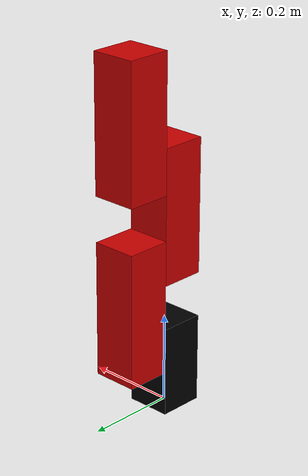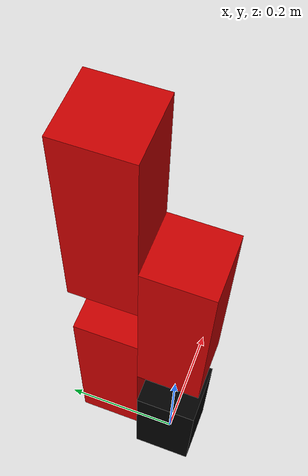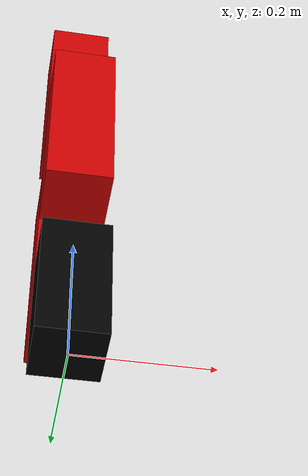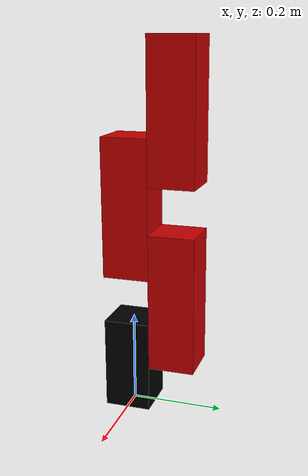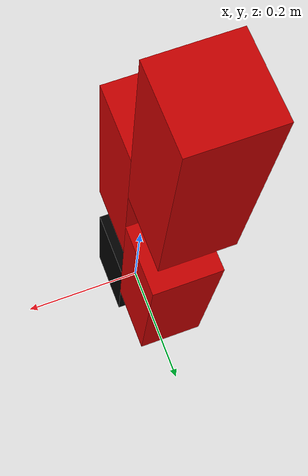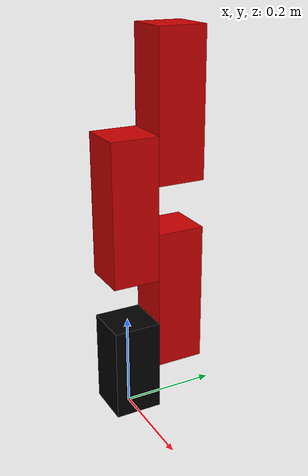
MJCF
<mujoco model="threelink">
  <compiler angle="radian"/>

  <worldbody>
    <geom size="0.05 0.05 0.1" pos="0 0 0.1" type="box" rgba="0 0 0 1"/>
    <body name="link1" pos="0 0.1 0.15">
      <inertial pos="0 0 0.1" mass="1" diaginertia="0.00833333 0.00833333 0.00166667"/>
      <joint name="link1_joint" pos="0 0 0" axis="0 1 0" actuatorfrcrange="-100 100"/>
      <geom size="0.05 0.05 0.15" pos="0 0 0.1" type="box" rgba="0.8 0 0 1"/>
      <body name="link2" pos="0 -0.1 0.2">
        <inertial pos="0 0 0.1" mass="1" diaginertia="0.00833333 0.00833333 0.00166667"/>
        <joint name="link2_joint" pos="0 0 0" axis="0 1 0" actuatorfrcrange="-100 100"/>
        <geom size="0.05 0.05 0.15" pos="0 0 0.1" type="box" rgba="0.8 0 0 1"/>
        <body name="link3" pos="0 0.1 0.2">
          <inertial pos="0 0 0.1" mass="1" diaginertia="0.00833333 0.00833333 0.00166667"/>
          <joint name="link3_joint" pos="0 0 0" axis="0 1 0" actuatorfrcrange="-100 100"/>
          <geom size="0.05 0.05 0.15" pos="0 0 0.1" type="box" rgba="0.8 0 0 1"/>
        </body>
      </body>
    </body>
  </worldbody>
</mujoco>
